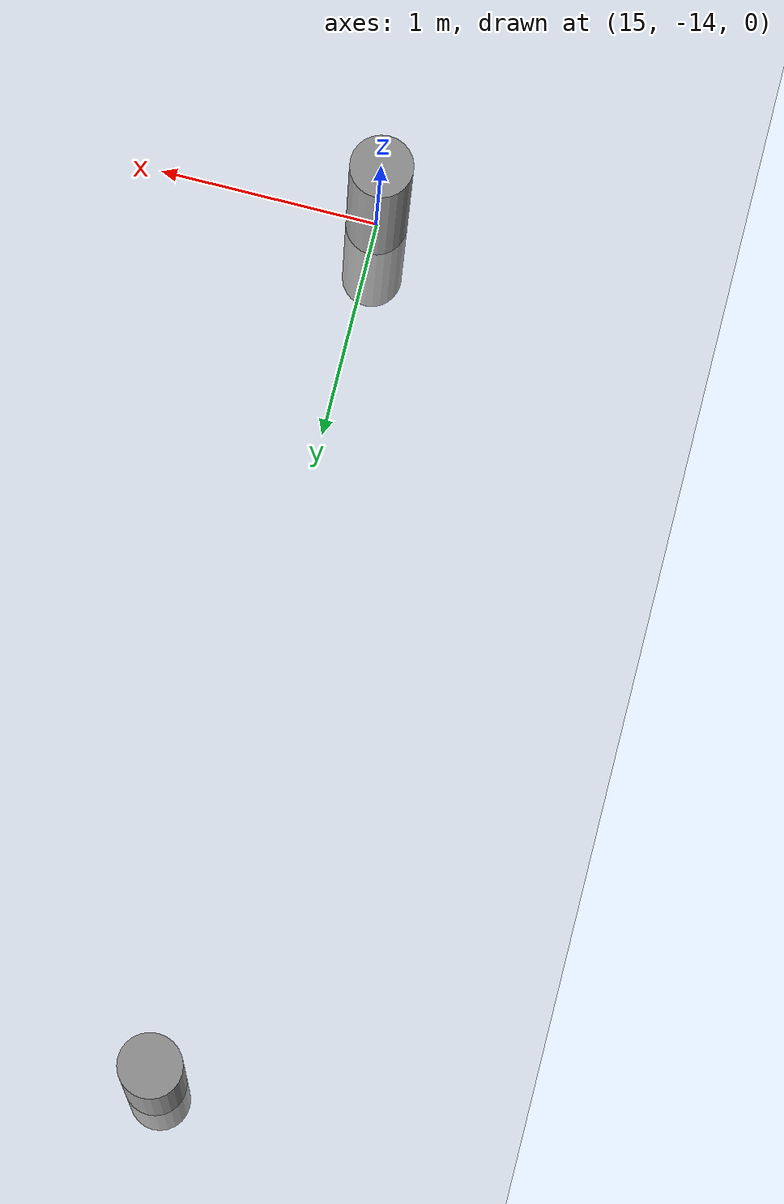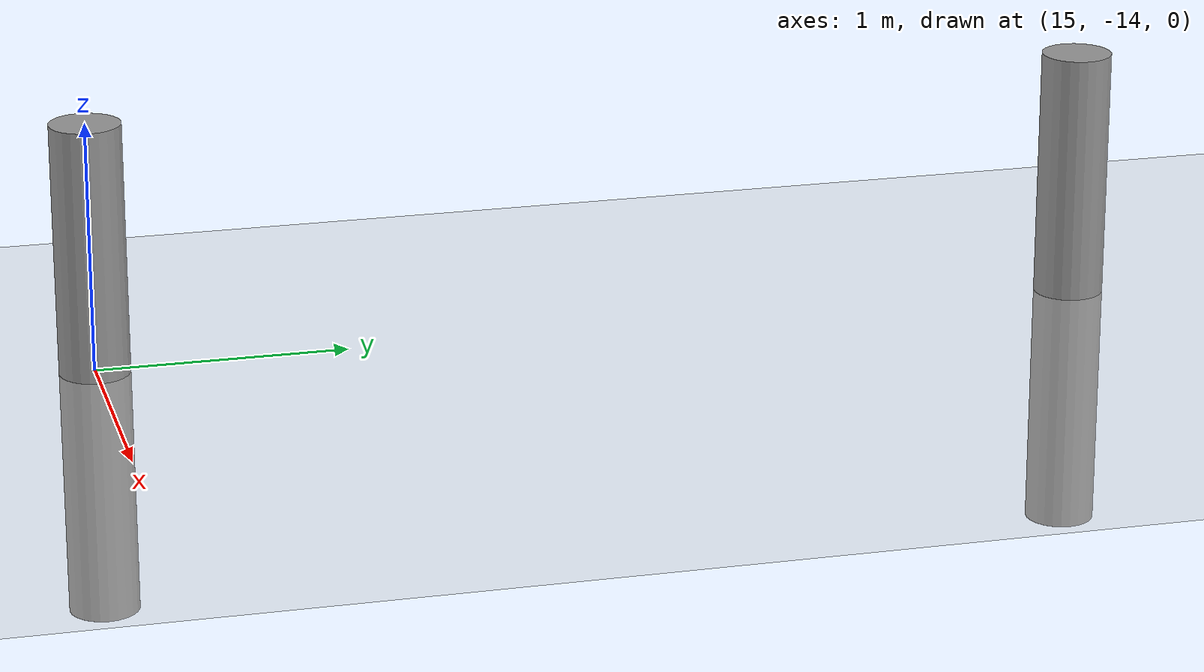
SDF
<sdf version="1.6">
 <world name="default">
  <model name="ground_plane">
   <static>1</static>
   <link name="link">
    <collision name="collision">
     <geometry><plane><normal>0 0 1</normal><size>100 100</size></plane></geometry>
     <surface><friction><ode><mu>100</mu><mu2>50</mu2></ode></friction></surface>
    </collision>
    <visual name="visual">
     <cast_shadows>0</cast_shadows>
     <geometry><plane><normal>0 0 1</normal><size>100 100</size></plane></geometry>
     <material>
      <script><uri>file://media/materials/scripts/gazebo.material</uri><name>Gazebo/Grey</name></script>
     </material>
    </visual>
   </link>
  </model>
  <model name="my_cylinder014_clone_31">
   <pose>15 -10 0 0 -0 0</pose>
   <link name="my_cylinder014::link">
    <inertial>
     <mass>1</mass>
     <inertia><ixx>0.145833</ixx><ixy>0</ixy><ixz>0</ixz><iyy>0.145833</iyy><iyz>0</iyz><izz>0.125</izz></inertia>
    </inertial>
    <visual name="visual">
     <geometry><cylinder><radius>0.14</radius><length>2</length></cylinder></geometry>
     <material>
      <script><name>Gazebo/Grey</name><uri>file://media/materials/scripts/gazebo.material</uri></script>
      <ambient>0.3 0.3 0.3 1</ambient>
      <diffuse>0.7 0.7 0.7 1</diffuse>
      <specular>1 0.01 0.01 1</specular>
      <emissive>0 0 0 1</emissive>
      <shader type="vertex"><normal_map>__default__</normal_map></shader>
     </material>
    </visual>
    <collision name="collision">
     <geometry><cylinder><radius>0.14</radius><length>2</length></cylinder></geometry>
     <surface>
      <friction>
       <ode><mu>1</mu><mu2>1</mu2><fdir1>0 0 0</fdir1><slip1>0</slip1><slip2>0</slip2></ode>
       <torsional>
        <coefficient>1</coefficient>
        <patch_radius>0</patch_radius>
        <surface_radius>0</surface_radius>
        <use_patch_radius>1</use_patch_radius>
        <ode><slip>0</slip></ode>
       </torsional>
      </friction>
      <bounce><restitution_coefficient>0</restitution_coefficient><threshold>1e+06</threshold></bounce>
      <contact>
       <collide_without_contact>0</collide_without_contact>
       <collide_without_contact_bitmask>1</collide_without_contact_bitmask>
       <collide_bitmask>1</collide_bitmask>
       <ode>
        <soft_cfm>0</soft_cfm>
        <soft_erp>0.2</soft_erp>
        <kp>1e+13</kp>
        <kd>1</kd>
        <max_vel>0.01</max_vel>
        <min_depth>0</min_depth>
       </ode>
       <bullet>
        <split_impulse>1</split_impulse>
        <split_impulse_penetration_threshold>-0.01</split_impulse_penetration_threshold>
        <soft_cfm>0</soft_cfm>
        <soft_erp>0.2</soft_erp>
        <kp>1e+13</kp>
        <kd>1</kd>
       </bullet>
      </contact>
     </surface>
    </collision>
   </link>
   <static>1</static>
  </model>
  <model name="my_cylinder014_clone_15">
   <pose>15 -14 0 0 -0 0</pose>
   <link name="my_cylinder014::link">
    <inertial>
     <mass>1</mass>
     <inertia><ixx>0.145833</ixx><ixy>0</ixy><ixz>0</ixz><iyy>0.145833</iyy><iyz>0</iyz><izz>0.125</izz></inertia>
    </inertial>
    <visual name="visual">
     <geometry><cylinder><radius>0.14</radius><length>2</length></cylinder></geometry>
     <material>
      <script><name>Gazebo/Grey</name><uri>file://media/materials/scripts/gazebo.material</uri></script>
      <ambient>0.3 0.3 0.3 1</ambient>
      <diffuse>0.7 0.7 0.7 1</diffuse>
      <specular>1 0.01 0.01 1</specular>
      <emissive>0 0 0 1</emissive>
      <shader type="vertex"><normal_map>__default__</normal_map></shader>
     </material>
    </visual>
    <collision name="collision">
     <geometry><cylinder><radius>0.14</radius><length>2</length></cylinder></geometry>
     <surface>
      <friction>
       <ode><mu>1</mu><mu2>1</mu2><fdir1>0 0 0</fdir1><slip1>0</slip1><slip2>0</slip2></ode>
       <torsional>
        <coefficient>1</coefficient>
        <patch_radius>0</patch_radius>
        <surface_radius>0</surface_radius>
        <use_patch_radius>1</use_patch_radius>
        <ode><slip>0</slip></ode>
       </torsional>
      </friction>
      <bounce><restitution_coefficient>0</restitution_coefficient><threshold>1e+06</threshold></bounce>
      <contact>
       <collide_without_contact>0</collide_without_contact>
       <collide_without_contact_bitmask>1</collide_without_contact_bitmask>
       <collide_bitmask>1</collide_bitmask>
       <ode>
        <soft_cfm>0</soft_cfm>
        <soft_erp>0.2</soft_erp>
        <kp>1e+13</kp>
        <kd>1</kd>
        <max_vel>0.01</max_vel>
        <min_depth>0</min_depth>
       </ode>
       <bullet>
        <split_impulse>1</split_impulse>
        <split_impulse_penetration_threshold>-0.01</split_impulse_penetration_threshold>
        <soft_cfm>0</soft_cfm>
        <soft_erp>0.2</soft_erp>
        <kp>1e+13</kp>
        <kd>1</kd>
       </bullet>
      </contact>
     </surface>
    </collision>
   </link>
   <static>1</static>
  </model>
  <model name="my_cylinder014_clone_15">
   <pose>15 -14 0 0 -0 0</pose>
   <link name="my_cylinder014::link">
    <inertial>
     <mass>1</mass>
     <inertia><ixx>0.145833</ixx><ixy>0</ixy><ixz>0</ixz><iyy>0.145833</iyy><iyz>0</iyz><izz>0.125</izz></inertia>
    </inertial>
    <visual name="visual">
     <geometry><cylinder><radius>0.14</radius><length>2</length></cylinder></geometry>
     <material>
      <script><name>Gazebo/Grey</name><uri>file://media/materials/scripts/gazebo.material</uri></script>
      <ambient>0.3 0.3 0.3 1</ambient>
      <diffuse>0.7 0.7 0.7 1</diffuse>
      <specular>1 0.01 0.01 1</specular>
      <emissive>0 0 0 1</emissive>
      <shader type="vertex"><normal_map>__default__</normal_map></shader>
     </material>
    </visual>
    <collision name="collision">
     <geometry><cylinder><radius>0.14</radius><length>2</length></cylinder></geometry>
     <surface>
      <friction>
       <ode><mu>1</mu><mu2>1</mu2><fdir1>0 0 0</fdir1><slip1>0</slip1><slip2>0</slip2></ode>
       <torsional>
        <coefficient>1</coefficient>
        <patch_radius>0</patch_radius>
        <surface_radius>0</surface_radius>
        <use_patch_radius>1</use_patch_radius>
        <ode><slip>0</slip></ode>
       </torsional>
      </friction>
      <bounce><restitution_coefficient>0</restitution_coefficient><threshold>1e+06</threshold></bounce>
      <contact>
       <collide_without_contact>0</collide_without_contact>
       <collide_without_contact_bitmask>1</collide_without_contact_bitmask>
       <collide_bitmask>1</collide_bitmask>
       <ode>
        <soft_cfm>0</soft_cfm>
        <soft_erp>0.2</soft_erp>
        <kp>1e+13</kp>
        <kd>1</kd>
        <max_vel>0.01</max_vel>
        <min_depth>0</min_depth>
       </ode>
       <bullet>
        <split_impulse>1</split_impulse>
        <split_impulse_penetration_threshold>-0.01</split_impulse_penetration_threshold>
        <soft_cfm>0</soft_cfm>
        <soft_erp>0.2</soft_erp>
        <kp>1e+13</kp>
        <kd>1</kd>
       </bullet>
      </contact>
     </surface>
    </collision>
   </link>
   <static>1</static>
  </model>
 </world>
</sdf>
